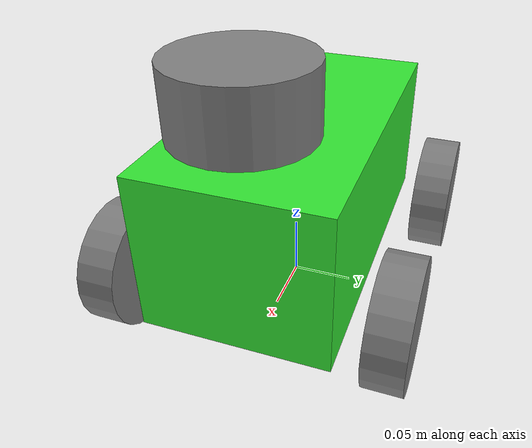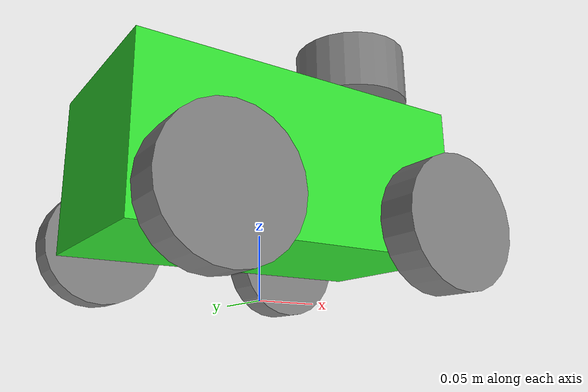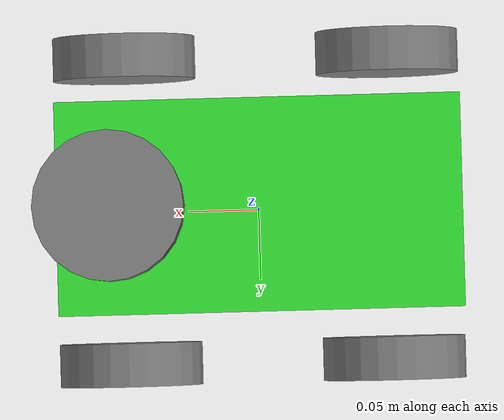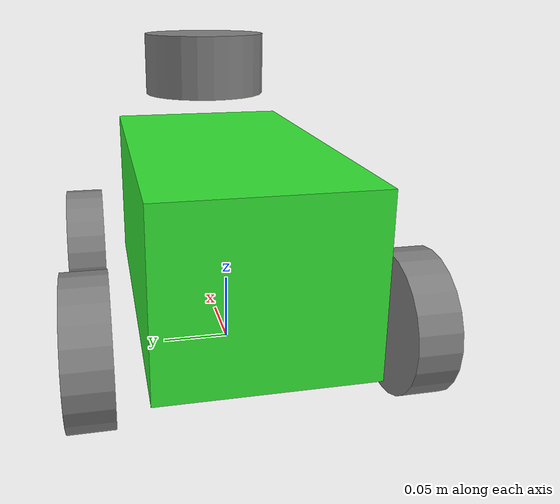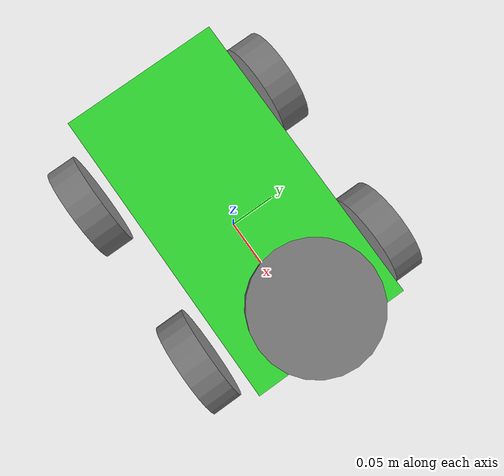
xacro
<?xml version="1.0"?>
<robot xmlns:xacro="http://ros.org/wiki/xacro" name="meccabot_robot">

  <xacro:include filename="inertial_macros.xacro"/>

  <!-- Launch arguments -->
  <xacro:arg name="hw_debug" default="false"/>

  <!-- Parameters -->
  <xacro:property name="wheel_radius" value="0.05"/>
  <xacro:property name="wheel_thickness" value="0.03"/>
  <xacro:property name="chassis_length" value="0.275"/>
  <xacro:property name="chassis_width" value="0.145"/>
  <xacro:property name="chassis_height" value="0.125"/>
  <xacro:property name="ground_clearance" value="0.033"/>
  <xacro:property name="wheel_z_offset" value="0.017"/>

  <!-- Derived positioning parameters -->
  <xacro:property name="chassis_half_length" value="${chassis_length/2}"/>
  <xacro:property name="chassis_half_width" value="${chassis_width/2}"/>
  <xacro:property name="chassis_z_offset" value="${ground_clearance + chassis_height/2}"/>

  <xacro:property name="wheel_separation_length" value="0.185"/>
  <xacro:property name="wheel_separation_width" value="0.185"/>
  <xacro:property name="wheel_x_offset" value="${wheel_separation_length/2}"/>
  <xacro:property name="wheel_y_offset" value="${wheel_separation_width/2}"/>

  <!-- Define Colors -->
  <material name="white">
    <color rgba="1 1 1 1" />
  </material>

  <material name="green">
    <color rgba="0.2 0.9 0.2 1"/>
  </material>

  <material name="grey">
    <color rgba="0.5 0.5 0.5 1.0" />
  </material>

  <!-- Base link -->
  <link name="base_link">
    <inertial>
      <origin xyz="0 0 0" rpy="0 0 0"/>
      <mass value="0.1"/>
      <inertia ixx="0.001" ixy="0.0" ixz="0.0" iyy="0.001" iyz="0.0" izz="0.001"/>
    </inertial>
  </link>

  <joint name="base_to_chassis" type="fixed">
    <parent link="base_link"/>
    <child link="chassis_link"/>
    <origin xyz="0 0 ${chassis_z_offset}" rpy="0 0 0"/>
  </joint>

  <!-- Chassis -->
  <link name="chassis_link">
    <inertial>
      <origin xyz="0 0 0" rpy="0 0 0"/>
      <mass value="5"/>
      <inertia
        ixx="0.015270833333333332"
        ixy="0.0" ixz="0.0"
        iyy="0.03802083333333334"
        iyz="0.0"
        izz="0.04027083333333333"/>
    </inertial>
    <visual>
      <origin xyz="0 0 0" rpy="0 0 0"/>
      <geometry>
        <box size="${chassis_length} ${chassis_width} ${chassis_height}"/>
      </geometry>
      <material name="green"/>
    </visual>
    <collision>
      <origin xyz="0 0 0" rpy="0 0 0"/>
      <geometry>
        <box size="${chassis_length} ${chassis_width} ${chassis_height}"/>
      </geometry>
    </collision>
  </link>

  <!-- Wheel macro -->
  <xacro:macro name="wheel" params="name x y z rpy">
    <joint name="${name}_joint" type="continuous">
      <parent link="chassis_link"/>
      <child link="${name}"/>
      <origin xyz="${x} ${y} ${z}" rpy="${rpy}"/>
      <axis xyz="0 1 0"/>
    </joint>
    <link name="${name}">
      <inertial>
        <origin xyz="0 0 0" rpy="0 0 0"/>
        <mass value="0.5"/>
        <inertia
          ixx="0.00035000000000000005"
          ixy="0.0" ixz="0.0"
          iyy="0.00035000000000000005"
          iyz="0.0"
          izz="0.0006250000000000001"/>
      </inertial>
      <visual>
        <origin xyz="0 0 0" rpy="1.5708 0 0"/>
        <geometry>
          <cylinder radius="${wheel_radius}" length="${wheel_thickness}"/>
        </geometry>
        <material name="grey"/>
      </visual>
      <collision>
        <origin xyz="0 0 0" rpy="1.5708 0 0"/>
        <geometry>
          <cylinder radius="${wheel_radius}" length="${wheel_thickness}"/>
        </geometry>
      </collision>
    </link>
  </xacro:macro>

  <!-- Instantiate wheels -->

  <xacro:wheel name="front_left_wheel"
               x="${wheel_x_offset}"
               y="${wheel_y_offset + wheel_thickness/2}"
               z="${wheel_z_offset - chassis_height/2}"
               rpy="0 0 0"/>

  <xacro:wheel name="front_right_wheel"
               x="${wheel_x_offset}"
               y="${-(wheel_y_offset + wheel_thickness/2)}"
               z="${wheel_z_offset - chassis_height/2}"
               rpy="0 0 0"/>

  <xacro:wheel name="rear_left_wheel"
               x="${-wheel_x_offset}"
               y="${wheel_y_offset + wheel_thickness/2}"
               z="${wheel_z_offset - chassis_height/2}"
               rpy="0 0 0"/>

  <xacro:wheel name="rear_right_wheel"
               x="${-wheel_x_offset}"
               y="${-(wheel_y_offset + wheel_thickness/2)}"
               z="${wheel_z_offset - chassis_height/2}"
               rpy="0 0 0"/>

  <!-- LIDAR Sensor -->
  <joint name="lidar_joint" type="fixed">
    <parent link="chassis_link"/>
    <child link="lidar_link"/>
    <origin xyz="0.1 0 ${chassis_height/2 + 0.05}" rpy="0 0 0"/>
  </joint>

  <link name="lidar_link">
    <inertial>
      <origin xyz="0 0 0" rpy="0 0 0"/>
      <mass value="0.2"/>
      <inertia
        ixx="0.0001" ixy="0.0" ixz="0.0"
        iyy="0.0001" iyz="0.0"
        izz="0.0001"/>
    </inertial>
    <visual>
      <origin xyz="0 0 0" rpy="0 0 0"/>
      <geometry>
        <cylinder radius="0.05" length="0.05"/>
      </geometry>
      <material name="grey"/>
    </visual>
    <collision>
      <origin xyz="0 0 0" rpy="0 0 0"/>
      <geometry>
        <cylinder radius="0.05" length="0.05"/>
      </geometry>
    </collision>
  </link>

  <!-- Laser frame (for SLAM compatibility) -->
  <joint name="laser_joint" type="fixed">
    <parent link="lidar_link"/>
    <child link="laser"/>
    <origin xyz="0 0 0" rpy="0 0 0"/>
  </joint>

  <link name="laser">
  </link>

  <ros2_control name="MecanumRobot" type="system">
    <hardware>
      <plugin>mecca_hardware_interface/MeccaHardware</plugin>
      <param name="serial_port">/dev/stm32_serial</param>
      <param name="wheel_radius">0.048</param>
      <param name="wheel_separation_x">0.175</param>
      <param name="wheel_separation_y">0.175</param>
      <param name="hw_debug">$(arg hw_debug)</param>
    </hardware>

    <joint name="front_left_wheel_joint">
      <command_interface name="velocity"/>
      <state_interface name="velocity"/>
      <state_interface name="position"/>
    </joint>

    <joint name="front_right_wheel_joint">
      <command_interface name="velocity"/>
      <state_interface name="velocity"/>
      <state_interface name="position"/>
    </joint>

    <joint name="rear_left_wheel_joint">
      <command_interface name="velocity"/>
      <state_interface name="velocity"/>
      <state_interface name="position"/>
    </joint>

    <joint name="rear_right_wheel_joint">
      <command_interface name="velocity"/>
      <state_interface name="velocity"/>
      <state_interface name="position"/>
    </joint>
  </ros2_control>

</robot>
